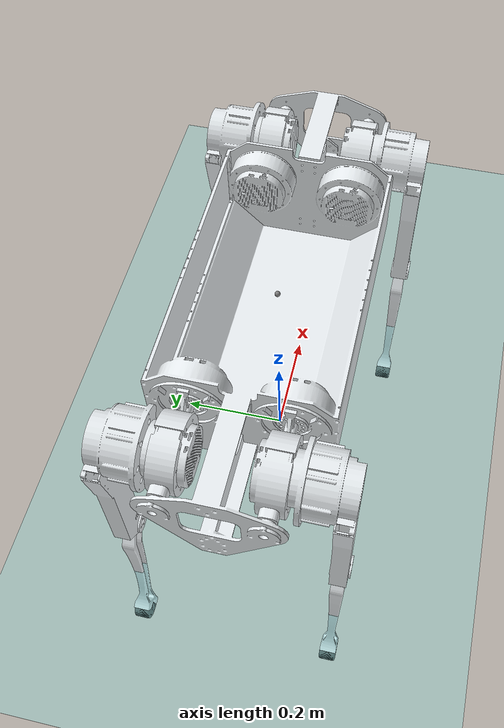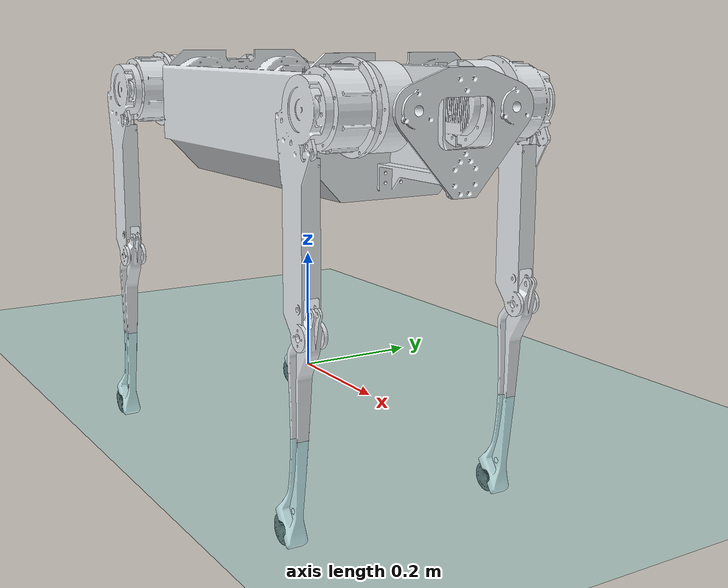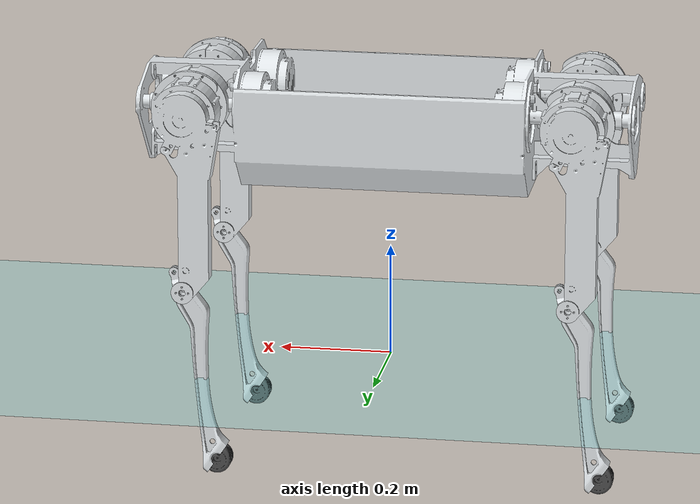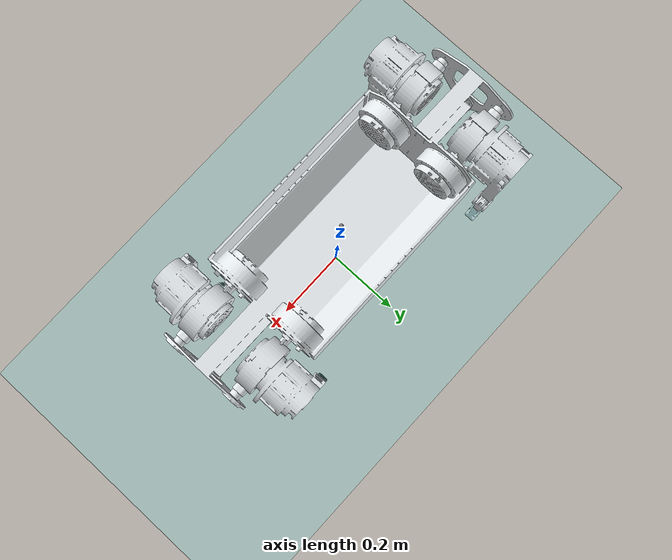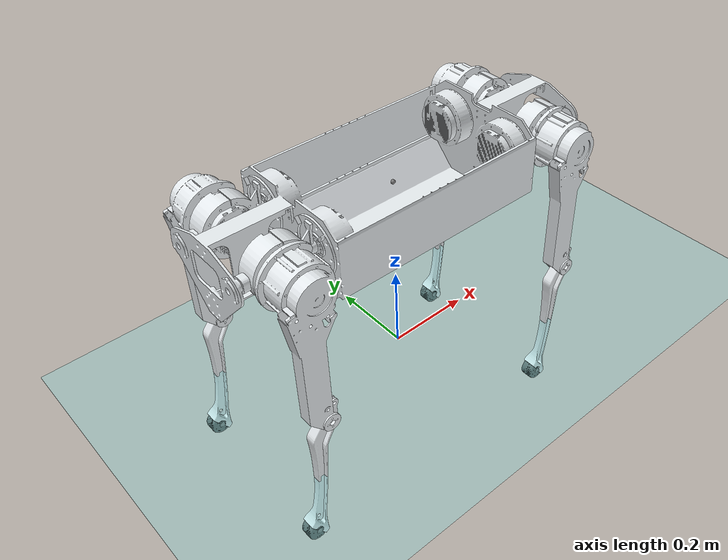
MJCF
<?xml version="1.0" ?>
<mujoco model="00000JQG">
  <compiler angle="radian" meshdir="meshes"/>
  <size njmax="500" nconmax="100"/>
  <option gravity="0 0 -9.806" iterations="50" solver="Newton" timestep="0.005"/>
  <default>
    <geom contype="1" conaffinity="1" friction="0.6 0.3 0.3" margin="0.001" group="0"/>
    <light castshadow="false" diffuse="1 1 1"/>
    <joint damping="0.01" armature="0.01" frictionloss="0.2"/>
    <camera fovy="60"/>
  </default>
  <asset>
    <texture type="skybox" builtin="gradient" rgb1="1.0 1.0 1.0" rgb2="0.6 0.8 1.0" width="512" height="512"/>
    <texture name="plane" type="2d" builtin="flat" rgb1="1 1 1" rgb2="1 1 1" width="512" height="512" mark="cross" markrgb="0 0 0"/>
    <material name="plane" reflectance="0.0" texture="plane" texrepeat="3 3" texuniform="true"/>
    <mesh name="base_link" file="base_link.STL"/>
    <mesh name="FL_hip_Link" file="FL_hip_Link.STL"/>
    <mesh name="FL_thigh_Link" file="FL_thigh_Link.STL"/>
    <mesh name="FL_calf_Link" file="FL_calf_Link.STL"/>
    <mesh name="FL_foot_Link" file="FL_foot_Link.STL"/>
    <mesh name="FR_hip_Link" file="FR_hip_Link.STL"/>
    <mesh name="FR_thigh_Link" file="FR_thigh_Link.STL"/>
    <mesh name="FR_calf_Link" file="FR_calf_Link.STL"/>
    <mesh name="FR_foot_Link" file="FR_foot_Link.STL"/>
    <mesh name="RL_hip_Link" file="RL_hip_Link.STL"/>
    <mesh name="RL_thigh_Link" file="RL_thigh_Link.STL"/>
    <mesh name="RL_calf_Link" file="RL_calf_Link.STL"/>
    <mesh name="RL_foot_Link" file="RL_foot_Link.STL"/>
    <mesh name="RR_hip_Link" file="RR_hip_Link.STL"/>
    <mesh name="RR_thigh_Link" file="RR_thigh_Link.STL"/>
    <mesh name="RR_calf_Link" file="RR_calf_Link.STL"/>
    <mesh name="RR_foot_Link" file="RR_foot_Link.STL"/>
  </asset>
  <visual>
    <rgba com="0.502 1.0 0 0.5" contactforce="0.98 0.4 0.4 0.7" contactpoint="1.0 1.0 0.6 0.4"/>
    <scale com="0.2" forcewidth="0.035" contactwidth="0.10" contactheight="0.04"/>
  </visual>
  <worldbody>
    <light directional="true" diffuse=".8 .8 .8" pos="0 0 10" dir="0 0 -10"/>
    <camera name="track" mode="trackcom" pos="0 -1.3 1.6" xyaxes="1 0 0 0 0.707 0.707"/>
    <geom name="floor" type="plane" conaffinity="1" condim="3" contype="1" rgba="0.5 0.9 0.9 0.1" material="plane" pos="0 0 0" size="0 0 1"/>
    <body name="base_link" pos="0 0 0.45">
      <joint type="free"/>
      <inertial pos="0 0 0.00190966" mass="14.58560949" fullinertia="0.14349257 0.74616979 0.81208549 -0.00026718 -0.00157087 -0.00087515"/>
      <geom type="mesh" mesh="base_link" contype="0" conaffinity="0" group="1" rgba="0.898039215686275 0.917647058823529 0.929411764705882 1"/>
      <geom type="box" size="0.26 0.1 0.065" pos="0 0 -0.014" rgba="0.5 0.5 0.5 0"/>
      <body name="FL_hip_Link" pos="0.256 0.082501 0.021382">
        <joint name="FL_hip_joint" pos="0 0 0" axis="-1 0 0" range="-0.5183627878423158 0.5183627878423158" actuatorfrcrange="-150.0 150.0"/>
        <inertial pos="0.0822261 -0.00402506 0.000225084" mass="1.63082880 " fullinertia="0.00178766 0.00339445 0.00227765 0.00001170 0.00003056 -0.00000246"/>
        <geom type="mesh" mesh="FL_hip_Link" contype="0" conaffinity="0" group="1" rgba="0.898039215686275 0.917647058823529 0.929411764705882 1"/>
        <geom type="cylinder" size="0.048 0.07" pos="0.078 -0.0045 0" quat="0.707107 0 0.707107 0" rgba="0.5 0.5 0.5 0"/>
        <body name="FL_thigh_Link" pos="0.084 0.019 0">
          <joint name="FL_thigh_joint" pos="0 0 0" axis="0 -1 0" range="-3.141592653589793 3.141592653589793" actuatorfrcrange="-150.0 150.0"/>
          <inertial pos="-0.00258422 0.0515512 -0.0280553" mass="2.22785066" fullinertia="0.01460195 0.01475298 0.00338528 0.00035401 -0.00098202 0.00216812"/>
          <geom type="mesh" mesh="FL_thigh_Link" contype="0" conaffinity="0" group="1" rgba="0.898039215686275 0.917647058823529 0.929411764705882 1"/>
          <geom type="cylinder" size="0.032 0.145" pos="-0.00051105 0.1085 -0.15625" rgba="0.5 0.5 0.5 0"/>
          <geom type="cylinder" size="0.052 0.04" pos="0 0.054 0" quat="0.707107 0.707107 0 0" rgba="0.5 0.5 0.5 0"/>
          <body name="FL_calf_Link" pos="-0.00051105 0.1085 -0.3125">
            <joint name="FL_calf_joint" pos="0 0 0" axis="0 -1 0" range="1.0471975511965976 2.8797932657906435" actuatorfrcrange="-150.0 150.0"/>
            <inertial pos="-0.0315147 -0.0185016 -0.154508" mass="0.31845032" fullinertia="0.00459680 0.00473427 0.00016433 0 -0.00064576 0"/>
            <geom type="mesh" mesh="FL_calf_Link" contype="0" conaffinity="0" group="1" rgba="0.898039215686275 0.917647058823529 0.929411764705882 1"/>
            <geom type="box" size="0.1375 0.008 0.008" pos="-0.02925 -0.00627 -0.15363" quat="0.637652 0 0.770325 0" rgba="0.5 0.5 0.5 0"/>
            <body name="FL_foot_Link" pos="-0.058509 -0.012548 -0.30725">
              <inertial pos="-0.00835898 -0.00605378 -0.00560197" mass="0.02703752" fullinertia="0.00000583 0.00000596 0.00000480 0 0.00000127 0"/>
              <geom type="mesh" mesh="FL_foot_Link" contype="0" conaffinity="0" group="1" rgba="0.298039215686275 0.298039215686275 0.298039215686275 1"/>
              <geom type="sphere" size="0.019" pos="-0.0055 -0.006 -0.002" rgba="0.5 0.5 0.5 0"/>
            </body>
          </body>
        </body>
      </body>
      <body name="FR_hip_Link" pos="0.256 -0.082501 0.021382">
        <joint name="FR_hip_joint" pos="0 0 0" axis="-1 0 0" range="-0.5183627878423158 0.5183627878423158" actuatorfrcrange="-150.0 150.0"/>
        <inertial pos="0.0822404 0.00402608 0.000225084" mass="1.63082880 " fullinertia="0.00178766 0.00339445 0.00227772 -0.00001198 0.00002973 0.00000246"/>
        <geom type="mesh" mesh="FR_hip_Link" contype="0" conaffinity="0" group="1" rgba="0.898039215686275 0.917647058823529 0.929411764705882 1"/>
        <geom type="cylinder" size="0.048 0.07" pos="0.078 0.0045 0" quat="0.707107 0 0.707107 0" rgba="0.5 0.5 0.5 0"/>
        <body name="FR_thigh_Link" pos="0.084 -0.019 0">
          <joint name="FR_thigh_joint" pos="0 0 0" axis="0 1 0" range="-3.141592653589793 3.141592653589793" actuatorfrcrange="-150.0 150.0"/>
          <inertial pos="-0.00292461 -0.0515462 -0.0280599" mass="2.22785066" fullinertia="0.01460195 0.01474883 0.00338141 -0.00032988 -0.00096253 -0.00216834"/>
          <geom type="mesh" mesh="FR_thigh_Link" contype="0" conaffinity="0" group="1" rgba="0.898039215686275 0.917647058823529 0.929411764705882 1"/>
          <geom type="cylinder" size="0.032 0.145" pos="-0.00049105 -0.1085 -0.15625" rgba="0.5 0.5 0.5 0"/>
          <geom type="cylinder" size="0.052 0.04" pos="0 -0.054 0" quat="0.707107 0.707107 0 0" rgba="0.5 0.5 0.5 0"/>
          <body name="FR_calf_Link" pos="-0.00049105 -0.1085 -0.31249">
            <joint name="FR_calf_joint" pos="0 0 0" axis="0 1 0" range="-2.8797932657906435 -1.0471975511965976" actuatorfrcrange="-150.0 150.0"/>
            <inertial pos="-0.0315347 0.0184965 -0.154521" mass="0.31845032" fullinertia="0.00459680 0.00473427 0.00016433 0 -0.00064576 0"/>
            <geom type="mesh" mesh="FR_calf_Link" contype="0" conaffinity="0" group="1" rgba="0.898039215686275 0.917647058823529 0.929411764705882 1"/>
            <geom type="box" size="0.1375 0.008 0.008" pos="-0.02926 0.00627 -0.15363" quat="0.637652 0 0.770325 0" rgba="0.5 0.5 0.5 0"/>
            <body name="FR_foot_Link" pos="-0.058529 0.012548 -0.30726">
              <inertial pos="-0.00835893 0.00605377 -0.00560213" mass="0.02703752" fullinertia="0.00000583 0.00000596 0.00000480 0 0.00000127 0"/>
              <geom type="mesh" mesh="FR_foot_Link" contype="0" conaffinity="0" group="1" rgba="0.298039215686275 0.298039215686275 0.298039215686275 1"/>
              <geom type="sphere" size="0.019" pos="-0.0055 0.006 -0.002" rgba="0.5 0.5 0.5 0"/>
            </body>
          </body>
        </body>
      </body>
      <body name="RL_hip_Link" pos="-0.256 0.082501 0.021382">
        <joint name="RL_hip_joint" pos="0 0 0" axis="1 0 0" range="-0.5183627878423158 0.5183627878423158" actuatorfrcrange="-150.0 150.0"/>
        <inertial pos="-0.0822404 -0.00402658 0.000224748" mass="1.63082880 " fullinertia="0.00178766 0.00339454 0.00227772 -0.00001198 -0.00002973 -0.00000246"/>
        <geom type="mesh" mesh="RL_hip_Link" contype="0" conaffinity="0" group="1" rgba="0.898039215686275 0.917647058823529 0.929411764705882 1"/>
        <geom type="cylinder" size="0.048 0.07" pos="-0.078 -0.0045 0" quat="0.707107 0 0.707107 0" rgba="0.5 0.5 0.5 0"/>
        <body name="RL_thigh_Link" pos="-0.084 0.018999 0">
          <joint name="RL_thigh_joint" pos="0 0 0" axis="0 -1 0" range="-3.141592653589793 3.141592653589793" actuatorfrcrange="-150.0 150.0"/>
          <inertial pos="-0.00455771 0.0515518 -0.0280548" mass="2.22785066" fullinertia="0.01460274 0.01472577 0.00335807 0.00021505 -0.00086967 0.00216812"/>
          <geom type="mesh" mesh="RL_thigh_Link" contype="0" conaffinity="0" group="1" rgba="0.898039215686275 0.917647058823529 0.929411764705882 1"/>
          <geom type="cylinder" size="0.032 0.145" pos="-0.00051106 0.1085 -0.15625" rgba="0.5 0.5 0.5 0"/>
          <geom type="cylinder" size="0.052 0.04" pos="0 0.054 0" quat="0.707107 0.707107 0 0" rgba="0.5 0.5 0.5 0"/>
          <body name="RL_calf_Link" pos="-0.00051106 0.1085 -0.3125">
            <joint name="RL_calf_joint" pos="0 0 0" axis="0 -1 0" range="1.0471975511965976 2.8797932657906435" actuatorfrcrange="-150.0 150.0"/>
            <inertial pos="-0.031678 -0.0185016 -0.154668" mass="0.31845032" fullinertia="0.00459680 0.00473427 0.00016433 0 -0.00064576 0"/>
            <geom type="mesh" mesh="RL_calf_Link" contype="0" conaffinity="0" group="1" rgba="0.898039215686275 0.917647058823529 0.929411764705882 1"/>
            <geom type="box" size="0.1375 0.008 0.008" pos="-0.02926 -0.00627 -0.15385" quat="0.637652 0 0.770325 0" rgba="0.5 0.5 0.5 0"/>
            <body name="RL_foot_Link" pos="-0.058511 -0.012548 -0.3077">
              <inertial pos="-0.00836046 -0.00584617 -0.00559983" mass="0.02703752" fullinertia="0.00000583 0.00000596 0.00000480 0 0.00000127 0"/>
              <geom type="mesh" mesh="RL_foot_Link" contype="0" conaffinity="0" group="1" rgba="0.298039215686275 0.298039215686275 0.298039215686275 1"/>
              <geom type="sphere" size="0.019" pos="-0.0055 -0.00585 -0.002" rgba="0.5 0.5 0.5 0"/>
            </body>
          </body>
        </body>
      </body>
      <body name="RR_hip_Link" pos="-0.256 -0.082501 0.021382">
        <joint name="RR_hip_joint" pos="0 0 0" axis="1 0 0" range="-0.5183627878423158 0.5183627878423158" actuatorfrcrange="-150.0 150.0"/>
        <inertial pos="-0.0822257 0.00402506 0.000225084" mass="1.63082880 " fullinertia="0.00178766 0.00339445 0.00227765 0.00001170 -0.00003056 0.00000246"/>
        <geom type="mesh" mesh="RR_hip_Link" contype="0" conaffinity="0" group="1" rgba="0.898039215686275 0.917647058823529 0.929411764705882 1"/>
        <geom type="cylinder" size="0.048 0.07" pos="-0.078 0.0045 0" quat="0.707107 0 0.707107 0" rgba="0.5 0.5 0.5 0"/>
        <body name="RR_thigh_Link" pos="-0.084 -0.019 0">
          <joint name="RR_thigh_joint" pos="0 0 0" axis="0 1 0" range="-3.141592653589793 3.141592653589793" actuatorfrcrange="-150.0 150.0"/>
          <inertial pos="-0.00489889 -0.0515462 -0.0280599" mass="2.22785066" fullinertia="0.01460195 0.01471887 0.00335145 -0.00019094 -0.00085016 -0.00216834"/>
          <geom type="mesh" mesh="RR_thigh_Link" contype="0" conaffinity="0" group="1" rgba="0.898039215686275 0.917647058823529 0.929411764705882 1"/>
          <geom type="cylinder" size="0.032 0.145" pos="-0.00049149 -0.1085 -0.15625" rgba="0.5 0.5 0.5 0"/>
          <geom type="cylinder" size="0.052 0.04" pos="0 -0.054 0" quat="0.707107 0.707107 0 0" rgba="0.5 0.5 0.5 0"/>
          <body name="RR_calf_Link" pos="-0.00049149 -0.1085 -0.31249">
            <joint name="RR_calf_joint" pos="0 0 0" axis="0 1 0" range="-2.8797932657906435 -1.0471975511965976" actuatorfrcrange="-150.0 150.0"/>
            <inertial pos="-0.031698 0.0184965 -0.154681" mass="0.31845032" fullinertia="0.00459680 0.00473427 0.00016433 0 -0.00064576 0"/>
            <geom type="mesh" mesh="RR_calf_Link" contype="0" conaffinity="0" group="1" rgba="0.898039215686275 0.917647058823529 0.929411764705882 1"/>
            <geom type="box" size="0.1375 0.008 0.008" pos="-0.02929 0.00627 -0.15382" quat="0.637575 0 0.770388 0" rgba="0.5 0.5 0.5 0"/>
            <body name="RR_foot_Link" pos="-0.058582 0.012548 -0.30764">
              <inertial pos="-0.00836052 0.00584616 -0.00559966" mass="0.02703752" fullinertia="0.00000583 0.00000596 0.00000480 0 0.00000127 0"/>
              <geom type="mesh" mesh="RR_foot_Link" contype="0" conaffinity="0" group="1" rgba="0.298039215686275 0.298039215686275 0.298039215686275 1"/>
              <geom type="sphere" size="0.019" pos="-0.0055 0.00585 -0.002" rgba="0.5 0.5 0.5 0"/>
            </body>
          </body>
        </body>
      </body>
      <site name="imu" pos="0 0 0"/>
    </body>
  </worldbody>
  <actuator>
    <motor name="FL_hip" gear="1" joint="FL_hip_joint" ctrlrange="-150.0 150.0" ctrllimited="true"/>
    <motor name="FL_thigh" gear="1" joint="FL_thigh_joint" ctrlrange="-150.0 150.0" ctrllimited="true"/>
    <motor name="FL_calf" gear="1" joint="FL_calf_joint" ctrlrange="-150.0 150.0" ctrllimited="true"/>
    <motor name="FR_hip" gear="1" joint="FR_hip_joint" ctrlrange="-150.0 150.0" ctrllimited="true"/>
    <motor name="FR_thigh" gear="1" joint="FR_thigh_joint" ctrlrange="-150.0 150.0" ctrllimited="true"/>
    <motor name="FR_calf" gear="1" joint="FR_calf_joint" ctrlrange="-150.0 150.0" ctrllimited="true"/>
    <motor name="RL_hip" gear="1" joint="RL_hip_joint" ctrlrange="-150.0 150.0" ctrllimited="true"/>
    <motor name="RL_thigh" gear="1" joint="RL_thigh_joint" ctrlrange="-150.0 150.0" ctrllimited="true"/>
    <motor name="RL_calf" gear="1" joint="RL_calf_joint" ctrlrange="-150.0 150.0" ctrllimited="true"/>
    <motor name="RR_hip" gear="1" joint="RR_hip_joint" ctrlrange="-150.0 150.0" ctrllimited="true"/>
    <motor name="RR_thigh" gear="1" joint="RR_thigh_joint" ctrlrange="-150.0 150.0" ctrllimited="true"/>
    <motor name="RR_calf" gear="1" joint="RR_calf_joint" ctrlrange="-150.0 150.0" ctrllimited="true"/>
  </actuator>
  <sensor>
    <jointpos name="FL_hip_pos" joint="FL_hip_joint"/>
    <jointpos name="FL_thigh_pos" joint="FL_thigh_joint"/>
    <jointpos name="FL_calf_pos" joint="FL_calf_joint"/>
    <jointpos name="FR_hip_pos" joint="FR_hip_joint"/>
    <jointpos name="FR_thigh_pos" joint="FR_thigh_joint"/>
    <jointpos name="FR_calf_pos" joint="FR_calf_joint"/>
    <jointpos name="RL_hip_pos" joint="RL_hip_joint"/>
    <jointpos name="RL_thigh_pos" joint="RL_thigh_joint"/>
    <jointpos name="RL_calf_pos" joint="RL_calf_joint"/>
    <jointpos name="RR_hip_pos" joint="RR_hip_joint"/>
    <jointpos name="RR_thigh_pos" joint="RR_thigh_joint"/>
    <jointpos name="RR_calf_pos" joint="RR_calf_joint"/>
    <jointvel name="FL_hip_vel" joint="FL_hip_joint"/>
    <jointvel name="FL_thigh_vel" joint="FL_thigh_joint"/>
    <jointvel name="FL_calf_vel" joint="FL_calf_joint"/>
    <jointvel name="FR_hip_vel" joint="FR_hip_joint"/>
    <jointvel name="FR_thigh_vel" joint="FR_thigh_joint"/>
    <jointvel name="FR_calf_vel" joint="FR_calf_joint"/>
    <jointvel name="RL_hip_vel" joint="RL_hip_joint"/>
    <jointvel name="RL_thigh_vel" joint="RL_thigh_joint"/>
    <jointvel name="RL_calf_vel" joint="RL_calf_joint"/>
    <jointvel name="RR_hip_vel" joint="RR_hip_joint"/>
    <jointvel name="RR_thigh_vel" joint="RR_thigh_joint"/>
    <jointvel name="RR_calf_vel" joint="RR_calf_joint"/>
    <accelerometer name="Body_Acc" site="imu"/>
    <gyro name="Body_Gyro" site="imu"/>
    <framepos name="Body_Pos" objtype="site" objname="imu"/>
    <framequat name="Body_Quat" objtype="site" objname="imu"/>
  </sensor>
</mujoco>
